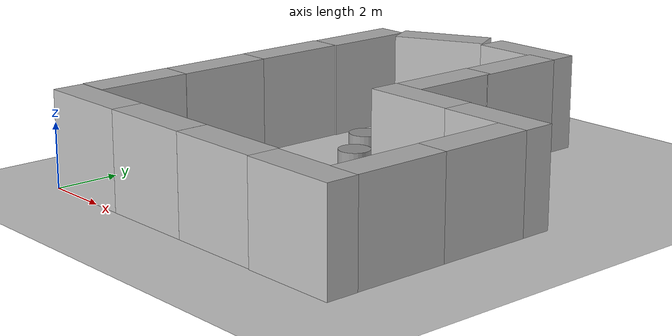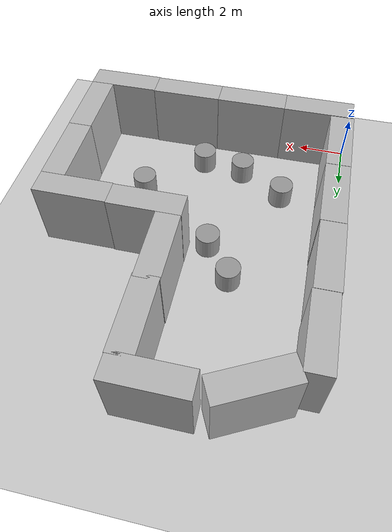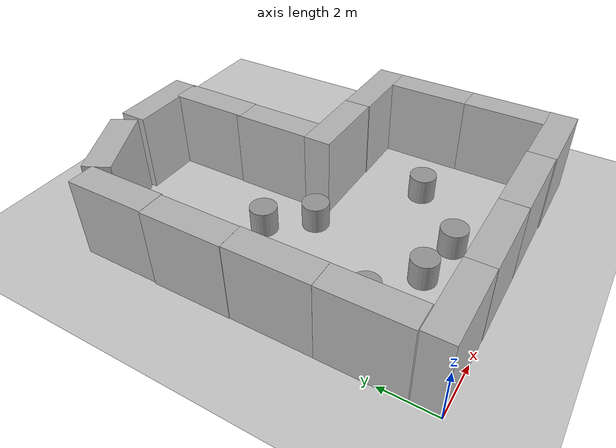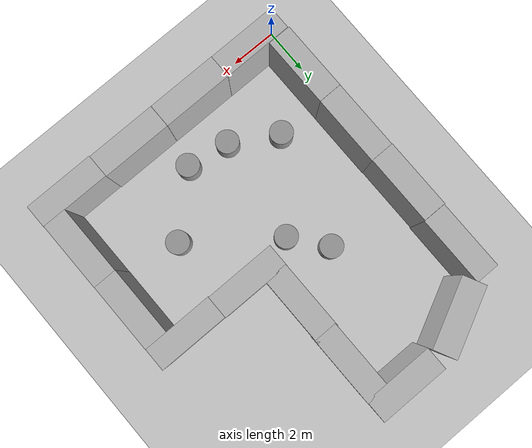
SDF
<sdf version="1.6">
 <world name="default">
  <light name="sun" type="directional">
   <pose>0 0 10 0 -0 0</pose>
   <diffuse>0.8 0.8 0.8 1</diffuse>
   <specular>0.2 0.2 0.2 1</specular>
   <attenuation>
    <range>1000</range>
    <constant>0.9</constant>
    <linear>0.01</linear>
    <quadratic>0.001</quadratic>
   </attenuation>
   <direction>-0.5 0.1 -0.9</direction>
  </light>
  <model name="ground_plane">
   <static>1</static>
   <link name="link">
    <collision name="collision">
     <geometry><plane><normal>0 0 1</normal><size>100 100</size></plane></geometry>
     <surface>
      <contact><collide_bitmask>65535</collide_bitmask></contact>
      <friction><ode><mu>100</mu><mu2>50</mu2></ode></friction>
     </surface>
    </collision>
    <visual name="visual">
     <cast_shadows>0</cast_shadows>
     <geometry><plane><normal>0 0 1</normal><size>100 100</size></plane></geometry>
     <material>
      <script><uri>file://media/materials/scripts/gazebo.material</uri><name>Gazebo/Grey</name></script>
     </material>
    </visual>
   </link>
  </model>
  <gravity>0 0 -9.8</gravity>
  <magnetic_field>6e-06 2.3e-05 -4.2e-05</magnetic_field>
  <atmosphere type="adiabatic"/>
  <physics name="default_physics" default="0" type="ode">
   <max_step_size>0.001</max_step_size>
   <real_time_factor>1</real_time_factor>
   <real_time_update_rate>1000</real_time_update_rate>
  </physics>
  <scene><ambient>0.4 0.4 0.4 1</ambient><background>0.7 0.7 0.7 1</background><shadows>1</shadows></scene>
  <spherical_coordinates>
   <surface_model>EARTH_WGS84</surface_model>
   <latitude_deg>0</latitude_deg>
   <longitude_deg>0</longitude_deg>
   <elevation>0</elevation>
   <heading_deg>0</heading_deg>
  </spherical_coordinates>
  <model name="brick_box_3x1x3">
   <static>1</static>
   <link name="chassis">
    <pose>0 0 1.5 0 -0 0</pose>
    <collision name="collision"><geometry><box><size>3 1 3</size></box></geometry></collision>
    <visual name="visual">
     <geometry><mesh><uri>model://brick_box_3x1x3/meshes/simple_box.dae</uri><scale>3 1 3</scale></mesh></geometry>
     <material>
      <script>
       <uri>model://brick_box_3x1x3/materials/scripts</uri>
       <uri>model://brick_box_3x1x3/materials/textures</uri>
       <name>BrickBox/Diffuse</name>
      </script>
     </material>
    </visual>
   </link>
   <pose>1.50875 0.474644 0 0 -0 0</pose>
  </model>
  <model name="brick_box_3x1x3_0">
   <static>1</static>
   <link name="chassis">
    <pose>0 0 1.5 0 -0 0</pose>
    <collision name="collision"><geometry><box><size>3 1 3</size></box></geometry></collision>
    <visual name="visual">
     <geometry><mesh><uri>model://brick_box_3x1x3/meshes/simple_box.dae</uri><scale>3 1 3</scale></mesh></geometry>
     <material>
      <script>
       <uri>model://brick_box_3x1x3/materials/scripts</uri>
       <uri>model://brick_box_3x1x3/materials/textures</uri>
       <name>BrickBox/Diffuse</name>
      </script>
     </material>
    </visual>
   </link>
   <pose>4.50671 0.468031 0 0 -0 0</pose>
  </model>
  <model name="brick_box_3x1x3_1">
   <static>1</static>
   <link name="chassis">
    <pose>0 0 1.5 0 -0 0</pose>
    <collision name="collision"><geometry><box><size>3 1 3</size></box></geometry></collision>
    <visual name="visual">
     <geometry><mesh><uri>model://brick_box_3x1x3/meshes/simple_box.dae</uri><scale>3 1 3</scale></mesh></geometry>
     <material>
      <script>
       <uri>model://brick_box_3x1x3/materials/scripts</uri>
       <uri>model://brick_box_3x1x3/materials/textures</uri>
       <name>BrickBox/Diffuse</name>
      </script>
     </material>
    </visual>
   </link>
   <pose>7.50853 0.466928 0 0 -0 0</pose>
  </model>
  <model name="brick_box_3x1x3_2">
   <static>1</static>
   <link name="chassis">
    <pose>0 0 1.5 0 -0 0</pose>
    <collision name="collision"><geometry><box><size>3 1 3</size></box></geometry></collision>
    <visual name="visual">
     <geometry><mesh><uri>model://brick_box_3x1x3/meshes/simple_box.dae</uri><scale>3 1 3</scale></mesh></geometry>
     <material>
      <script>
       <uri>model://brick_box_3x1x3/materials/scripts</uri>
       <uri>model://brick_box_3x1x3/materials/textures</uri>
       <name>BrickBox/Diffuse</name>
      </script>
     </material>
    </visual>
   </link>
   <pose>11.4908 2.42228 0 0 0 -1.56912</pose>
  </model>
  <model name="brick_box_3x1x3_2_clone">
   <static>1</static>
   <link name="chassis">
    <pose>0 0 1.5 0 -0 0</pose>
    <collision name="collision"><geometry><box><size>3 1 3</size></box></geometry></collision>
    <visual name="visual">
     <geometry><mesh><uri>model://brick_box_3x1x3/meshes/simple_box.dae</uri><scale>3 1 3</scale></mesh></geometry>
     <material>
      <script>
       <uri>model://brick_box_3x1x3/materials/scripts</uri>
       <uri>model://brick_box_3x1x3/materials/textures</uri>
       <name>BrickBox/Diffuse</name>
      </script>
     </material>
    </visual>
   </link>
   <pose>11.4799 5.41697 0 0 0 -1.5703</pose>
  </model>
  <model name="brick_box_3x1x3_2_clone_0">
   <static>1</static>
   <link name="chassis">
    <pose>0 0 1.5 0 -0 0</pose>
    <collision name="collision"><geometry><box><size>3 1 3</size></box></geometry></collision>
    <visual name="visual">
     <geometry><mesh><uri>model://brick_box_3x1x3/meshes/simple_box.dae</uri><scale>3 1 3</scale></mesh></geometry>
     <material>
      <script>
       <uri>model://brick_box_3x1x3/materials/scripts</uri>
       <uri>model://brick_box_3x1x3/materials/textures</uri>
       <name>BrickBox/Diffuse</name>
      </script>
     </material>
    </visual>
   </link>
   <pose>0.461475 2.49802 0 0 0 -1.56912</pose>
  </model>
  <model name="brick_box_3x1x3_2_clone_1">
   <static>1</static>
   <link name="chassis">
    <pose>0 0 1.5 0 -0 0</pose>
    <collision name="collision"><geometry><box><size>3 1 3</size></box></geometry></collision>
    <visual name="visual">
     <geometry><mesh><uri>model://brick_box_3x1x3/meshes/simple_box.dae</uri><scale>3 1 3</scale></mesh></geometry>
     <material>
      <script>
       <uri>model://brick_box_3x1x3/materials/scripts</uri>
       <uri>model://brick_box_3x1x3/materials/textures</uri>
       <name>BrickBox/Diffuse</name>
      </script>
     </material>
    </visual>
   </link>
   <pose>0.460925 5.50212 0 0 0 -1.56912</pose>
  </model>
  <model name="brick_box_3x1x3_2_clone_2">
   <static>1</static>
   <link name="chassis">
    <pose>0 0 1.5 0 -0 0</pose>
    <collision name="collision"><geometry><box><size>3 1 3</size></box></geometry></collision>
    <visual name="visual">
     <geometry><mesh><uri>model://brick_box_3x1x3/meshes/simple_box.dae</uri><scale>3 1 3</scale></mesh></geometry>
     <material>
      <script>
       <uri>model://brick_box_3x1x3/materials/scripts</uri>
       <uri>model://brick_box_3x1x3/materials/textures</uri>
       <name>BrickBox/Diffuse</name>
      </script>
     </material>
    </visual>
   </link>
   <pose>0.438851 8.50413 0 0 0 -1.56912</pose>
  </model>
  <model name="brick_box_3x1x3_1_clone">
   <static>1</static>
   <link name="chassis">
    <pose>0 0 1.5 0 -0 0</pose>
    <collision name="collision"><geometry><box><size>3 1 3</size></box></geometry></collision>
    <visual name="visual">
     <geometry><mesh><uri>model://brick_box_3x1x3/meshes/simple_box.dae</uri><scale>3 1 3</scale></mesh></geometry>
     <material>
      <script>
       <uri>model://brick_box_3x1x3/materials/scripts</uri>
       <uri>model://brick_box_3x1x3/materials/textures</uri>
       <name>BrickBox/Diffuse</name>
      </script>
     </material>
    </visual>
   </link>
   <pose>10.5071 0.438356 0 0 -0 0</pose>
  </model>
  <model name="brick_box_3x1x3_clone">
   <static>1</static>
   <link name="chassis">
    <pose>0 0 1.5 0 -0 0</pose>
    <collision name="collision"><geometry><box><size>3 1 3</size></box></geometry></collision>
    <visual name="visual">
     <geometry><mesh><uri>model://brick_box_3x1x3/meshes/simple_box.dae</uri><scale>3 1 3</scale></mesh></geometry>
     <material>
      <script>
       <uri>model://brick_box_3x1x3/materials/scripts</uri>
       <uri>model://brick_box_3x1x3/materials/textures</uri>
       <name>BrickBox/Diffuse</name>
      </script>
     </material>
    </visual>
   </link>
   <pose>10.4717 7.41457 0 0 -0 0</pose>
  </model>
  <model name="brick_box_3x1x3_clone_0">
   <static>1</static>
   <link name="chassis">
    <pose>0 0 1.5 0 -0 0</pose>
    <collision name="collision"><geometry><box><size>3 1 3</size></box></geometry></collision>
    <visual name="visual">
     <geometry><mesh><uri>model://brick_box_3x1x3/meshes/simple_box.dae</uri><scale>3 1 3</scale></mesh></geometry>
     <material>
      <script>
       <uri>model://brick_box_3x1x3/materials/scripts</uri>
       <uri>model://brick_box_3x1x3/materials/textures</uri>
       <name>BrickBox/Diffuse</name>
      </script>
     </material>
    </visual>
   </link>
   <pose>7.47452 7.44114 0 0 -0 0</pose>
  </model>
  <model name="brick_box_3x1x3_2_clone_2_clone">
   <static>1</static>
   <link name="chassis">
    <pose>0 0 1.5 0 -0 0</pose>
    <collision name="collision"><geometry><box><size>3 1 3</size></box></geometry></collision>
    <visual name="visual">
     <geometry><mesh><uri>model://brick_box_3x1x3/meshes/simple_box.dae</uri><scale>3 1 3</scale></mesh></geometry>
     <material>
      <script>
       <uri>model://brick_box_3x1x3/materials/scripts</uri>
       <uri>model://brick_box_3x1x3/materials/textures</uri>
       <name>BrickBox/Diffuse</name>
      </script>
     </material>
    </visual>
   </link>
   <pose>6.48149 9.36867 0 0 0 -1.56912</pose>
  </model>
  <model name="brick_box_3x1x3_2_clone_2_clone_clone">
   <static>1</static>
   <link name="chassis">
    <pose>0 0 1.5 0 -0 0</pose>
    <collision name="collision"><geometry><box><size>3 1 3</size></box></geometry></collision>
    <visual name="visual">
     <geometry><mesh><uri>model://brick_box_3x1x3/meshes/simple_box.dae</uri><scale>3 1 3</scale></mesh></geometry>
     <material>
      <script>
       <uri>model://brick_box_3x1x3/materials/scripts</uri>
       <uri>model://brick_box_3x1x3/materials/textures</uri>
       <name>BrickBox/Diffuse</name>
      </script>
     </material>
    </visual>
   </link>
   <pose>6.49964 12.2215 0 0 0 -1.56912</pose>
  </model>
  <model name="brick_box_3x1x3_0_clone">
   <static>1</static>
   <link name="chassis">
    <pose>0 0 1.5 0 -0 0</pose>
    <collision name="collision"><geometry><box><size>3 1 3</size></box></geometry></collision>
    <visual name="visual">
     <geometry><mesh><uri>model://brick_box_3x1x3/meshes/simple_box.dae</uri><scale>3 1 3</scale></mesh></geometry>
     <material>
      <script>
       <uri>model://brick_box_3x1x3/materials/scripts</uri>
       <uri>model://brick_box_3x1x3/materials/textures</uri>
       <name>BrickBox/Diffuse</name>
      </script>
     </material>
    </visual>
   </link>
   <pose>5.47914 14.1077 0 0 -0 0</pose>
  </model>
  <model name="brick_box_3x1x3_2_clone_2_clone_0">
   <static>1</static>
   <link name="chassis">
    <pose>0 0 1.5 0 -0 0</pose>
    <collision name="collision"><geometry><box><size>3 1 3</size></box></geometry></collision>
    <visual name="visual">
     <geometry><mesh><uri>model://brick_box_3x1x3/meshes/simple_box.dae</uri><scale>3 1 3</scale></mesh></geometry>
     <material>
      <script>
       <uri>model://brick_box_3x1x3/materials/scripts</uri>
       <uri>model://brick_box_3x1x3/materials/textures</uri>
       <name>BrickBox/Diffuse</name>
      </script>
     </material>
    </visual>
   </link>
   <pose>0.469814 11.5111 0 0 0 -1.56912</pose>
  </model>
  <model name="brick_box_3x1x3_0_clone_clone">
   <static>1</static>
   <link name="chassis">
    <pose>0 0 1.5 0 -0 0</pose>
    <collision name="collision"><geometry><box><size>3 1 3</size></box></geometry></collision>
    <visual name="visual">
     <geometry><mesh><uri>model://brick_box_3x1x3/meshes/simple_box.dae</uri><scale>3 1 3</scale></mesh></geometry>
     <material>
      <script>
       <uri>model://brick_box_3x1x3/materials/scripts</uri>
       <uri>model://brick_box_3x1x3/materials/textures</uri>
       <name>BrickBox/Diffuse</name>
      </script>
     </material>
    </visual>
   </link>
   <pose>2.33071 13.5447 0 0 -0 0.463832</pose>
  </model>
  <model name="unit_cylinder">
   <pose>4.03148 8.48809 0.499993 -4e-06 -3e-06 -0</pose>
   <link name="link">
    <inertial>
     <mass>1</mass>
     <inertia><ixx>0.145833</ixx><ixy>0</ixy><ixz>0</ixz><iyy>0.145833</iyy><iyz>0</iyz><izz>0.125</izz></inertia>
    </inertial>
    <collision name="collision">
     <geometry><cylinder><radius>0.5</radius><length>1</length></cylinder></geometry>
    </collision>
    <visual name="visual">
     <geometry><cylinder><radius>0.5</radius><length>1</length></cylinder></geometry>
     <material>
      <script><name>Gazebo/Grey</name><uri>file://media/materials/scripts/gazebo.material</uri></script>
     </material>
    </visual>
   </link>
  </model>
  <model name="unit_cylinder_0">
   <pose>5.1683 7.02106 0.499998 3e-06 -3e-06 0</pose>
   <link name="link">
    <inertial>
     <mass>1</mass>
     <inertia><ixx>0.145833</ixx><ixy>0</ixy><ixz>0</ixz><iyy>0.145833</iyy><iyz>0</iyz><izz>0.125</izz></inertia>
    </inertial>
    <collision name="collision">
     <geometry><cylinder><radius>0.5</radius><length>1</length></cylinder></geometry>
    </collision>
    <visual name="visual">
     <geometry><cylinder><radius>0.5</radius><length>1</length></cylinder></geometry>
     <material>
      <script><name>Gazebo/Grey</name><uri>file://media/materials/scripts/gazebo.material</uri></script>
     </material>
    </visual>
   </link>
  </model>
  <model name="unit_cylinder_1">
   <pose>4.49566 2.52331 0.499993 -4e-06 -3e-06 -0</pose>
   <link name="link">
    <inertial>
     <mass>1</mass>
     <inertia><ixx>0.145833</ixx><ixy>0</ixy><ixz>0</ixz><iyy>0.145833</iyy><iyz>0</iyz><izz>0.125</izz></inertia>
    </inertial>
    <collision name="collision">
     <geometry><cylinder><radius>0.5</radius><length>1</length></cylinder></geometry>
    </collision>
    <visual name="visual">
     <geometry><cylinder><radius>0.5</radius><length>1</length></cylinder></geometry>
     <material>
      <script><name>Gazebo/Grey</name><uri>file://media/materials/scripts/gazebo.material</uri></script>
     </material>
    </visual>
   </link>
  </model>
  <model name="unit_cylinder_2">
   <pose>2.5676 3.65609 0.499992 -3e-06 3e-06 0</pose>
   <link name="link">
    <inertial>
     <mass>1</mass>
     <inertia><ixx>0.145833</ixx><ixy>0</ixy><ixz>0</ixz><iyy>0.145833</iyy><iyz>0</iyz><izz>0.125</izz></inertia>
    </inertial>
    <collision name="collision">
     <geometry><cylinder><radius>0.5</radius><length>1</length></cylinder></geometry>
    </collision>
    <visual name="visual">
     <geometry><cylinder><radius>0.5</radius><length>1</length></cylinder></geometry>
     <material>
      <script><name>Gazebo/Grey</name><uri>file://media/materials/scripts/gazebo.material</uri></script>
     </material>
    </visual>
   </link>
  </model>
  <model name="unit_cylinder_3">
   <pose>6.33652 2.23236 0.499993 -3e-06 3e-06 0</pose>
   <link name="link">
    <inertial>
     <mass>1</mass>
     <inertia><ixx>0.145833</ixx><ixy>0</ixy><ixz>0</ixz><iyy>0.145833</iyy><iyz>0</iyz><izz>0.125</izz></inertia>
    </inertial>
    <collision name="collision">
     <geometry><cylinder><radius>0.5</radius><length>1</length></cylinder></geometry>
    </collision>
    <visual name="visual">
     <geometry><cylinder><radius>0.5</radius><length>1</length></cylinder></geometry>
     <material>
      <script><name>Gazebo/Grey</name><uri>file://media/materials/scripts/gazebo.material</uri></script>
     </material>
    </visual>
   </link>
  </model>
  <model name="unit_cylinder_4">
   <pose>8.63871 4.37681 0.499997 3e-06 4e-06 -0</pose>
   <link name="link">
    <inertial>
     <mass>1</mass>
     <inertia><ixx>0.145833</ixx><ixy>0</ixy><ixz>0</ixz><iyy>0.145833</iyy><iyz>0</iyz><izz>0.125</izz></inertia>
    </inertial>
    <collision name="collision">
     <geometry><cylinder><radius>0.5</radius><length>1</length></cylinder></geometry>
    </collision>
    <visual name="visual">
     <geometry><cylinder><radius>0.5</radius><length>1</length></cylinder></geometry>
     <material>
      <script><name>Gazebo/Grey</name><uri>file://media/materials/scripts/gazebo.material</uri></script>
     </material>
    </visual>
   </link>
  </model>
 </world>
</sdf>
